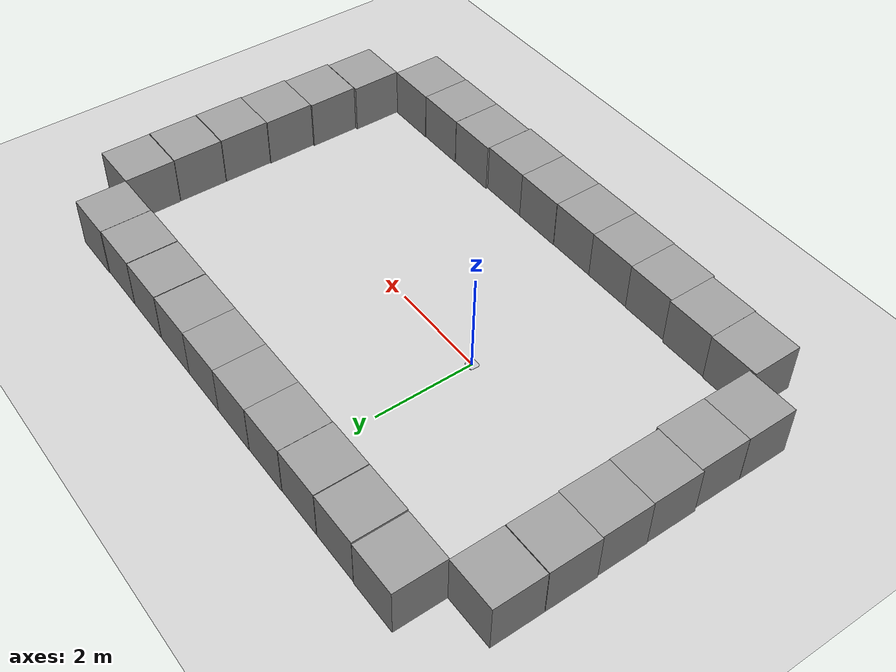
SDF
<sdf version="1.7">
 <world name="default">
  <light name="sun" type="directional">
   <pose>0 0 10 0 -0 0</pose>
   <diffuse>0.8 0.8 0.8 1</diffuse>
   <specular>0.2 0.2 0.2 1</specular>
   <attenuation>
    <range>1000</range>
    <constant>0.9</constant>
    <linear>0.01</linear>
    <quadratic>0.001</quadratic>
   </attenuation>
   <direction>-0.5 0.1 -0.9</direction>
   <spot><inner_angle>0</inner_angle><outer_angle>0</outer_angle><falloff>0</falloff></spot>
  </light>
  <model name="ground_plane">
   <static>1</static>
   <link name="link">
    <collision name="collision">
     <geometry><plane><normal>0 0 1</normal><size>100 100</size></plane></geometry>
     <surface>
      <contact><collide_bitmask>65535</collide_bitmask></contact>
      <friction><ode><mu>100</mu><mu2>50</mu2></ode></friction>
     </surface>
    </collision>
    <visual name="visual">
     <cast_shadows>0</cast_shadows>
     <geometry><plane><normal>0 0 1</normal><size>100 100</size></plane></geometry>
     <material>
      <script><uri>file://media/materials/scripts/gazebo.material</uri><name>Gazebo/Grey</name></script>
     </material>
    </visual>
   </link>
  </model>
  <gravity>0 0 -9.8</gravity>
  <magnetic_field>6e-06 2.3e-05 -4.2e-05</magnetic_field>
  <atmosphere type="adiabatic"/>
  <physics type="ode">
   <max_step_size>0.001</max_step_size>
   <real_time_factor>1</real_time_factor>
   <real_time_update_rate>1000</real_time_update_rate>
  </physics>
  <scene><ambient>0.4 0.4 0.4 1</ambient><background>0.7 0.7 0.7 1</background><shadows>1</shadows></scene>
  <spherical_coordinates>
   <surface_model>EARTH_WGS84</surface_model>
   <latitude_deg>0</latitude_deg>
   <longitude_deg>0</longitude_deg>
   <elevation>0</elevation>
   <heading_deg>0</heading_deg>
  </spherical_coordinates>
  <model name="fwomni">
   <link name="base_footprint">
    <inertial>
     <pose>0.002014 -0 0.005878 0 -0 0</pose>
     <mass>3.04689</mass>
     <inertia>
      <ixx>0.00914958</ixx>
      <ixy>-2.00784e-20</ixy>
      <ixz>-0.000169029</ixz>
      <iyy>0.00953652</iyy>
      <iyz>-2.13965e-20</iyz>
      <izz>0.0183689</izz>
     </inertia>
    </inertial>
    <collision name="base_footprint_fixed_joint_lump__base_link_collision">
     <pose>0 0 0.005 0 -0 0</pose>
     <geometry>
      <mesh>
       <scale>0.001 0.001 0.001</scale>
       <uri>/home/dell/Desktop/noetic/fwomni_ws/src/fwomni/meshes/base_link.stl</uri>
      </mesh>
     </geometry>
     <surface><friction><ode><mu>0.2</mu><mu2>0.2</mu2></ode></friction></surface>
    </collision>
    <collision name="base_footprint_fixed_joint_lump__rplidar_collision_1">
     <pose>0 0 0.045 0 -0 0</pose>
     <geometry>
      <mesh>
       <scale>0.001 0.001 0.001</scale>
       <uri>/home/dell/Desktop/noetic/fwomni_ws/src/fwomni/meshes/rplidar.stl</uri>
      </mesh>
     </geometry>
     <surface><friction><ode><mu>0.2</mu><mu2>0.2</mu2></ode></friction></surface>
    </collision>
    <visual name="base_footprint_fixed_joint_lump__base_link_visual">
     <pose>0 0 0.005 0 -0 0</pose>
     <geometry>
      <mesh>
       <scale>0.001 0.001 0.001</scale>
       <uri>/home/dell/Desktop/noetic/fwomni_ws/src/fwomni/meshes/base_link.stl</uri>
      </mesh>
     </geometry>
     <material>
      <script><name>Gazebo/Silver</name><uri>file://media/materials/scripts/gazebo.material</uri></script>
     </material>
    </visual>
    <visual name="base_footprint_fixed_joint_lump__rplidar_visual_1">
     <pose>0 0 0.045 0 -0 0</pose>
     <geometry>
      <mesh>
       <scale>0.001 0.001 0.001</scale>
       <uri>/home/dell/Desktop/noetic/fwomni_ws/src/fwomni/meshes/rplidar.stl</uri>
      </mesh>
     </geometry>
     <material>
      <script><name>Gazebo/Silver</name><uri>file://media/materials/scripts/gazebo.material</uri></script>
     </material>
    </visual>
    <self_collide>1</self_collide>
    <sensor name="head_hokuyo_sensor" type="ray">
     <visualize>0</visualize>
     <update_rate>20</update_rate>
     <ray>
      <scan>
       <horizontal>
        <samples>1400</samples>
        <resolution>1</resolution>
        <min_angle>-3.14159</min_angle>
        <max_angle>3.14159</max_angle>
       </horizontal>
       <vertical><samples>1</samples><min_angle>0</min_angle><max_angle>0</max_angle></vertical>
      </scan>
      <range><min>0.05</min><max>12</max><resolution>0.01</resolution></range>
      <noise><type>gaussian</type><mean>0</mean><stddev>0.01</stddev></noise>
     </ray>
     <plugin name="gazebo_ros_head_hokuyo_controller" filename="libgazebo_ros_laser.so">
      <topicName>laser/scan</topicName>
      <frameName>rplidar</frameName>
      <robotNamespace>/</robotNamespace>
     </plugin>
     <pose>0.065 0 0.07 0 -0 0</pose>
    </sensor>
   </link>
   <joint name="Cont1" type="revolute">
    <pose relative_to="base_footprint">0.085328 -0.085328 0.01 0 -0 0.785398</pose>
    <parent>base_footprint</parent>
    <child>front_right</child>
    <axis>
     <xyz>0 1 0</xyz>
     <limit><lower>-1e+16</lower><upper>1e+16</upper></limit>
     <dynamics><spring_reference>0</spring_reference><spring_stiffness>0</spring_stiffness></dynamics>
    </axis>
   </joint>
   <link name="front_right">
    <pose relative_to="Cont1">0 0 0 0 -0 0</pose>
    <inertial>
     <pose>0.003 -0 0 0 -0 0</pose>
     <mass>0.0147969</mass>
     <inertia><ixx>0</ixx><ixy>0</ixy><ixz>0</ixz><iyy>1e-06</iyy><iyz>0</iyz><izz>0</izz></inertia>
    </inertial>
    <collision name="front_right_collision">
     <pose>0 0 0 0 0 -1.5708</pose>
     <geometry>
      <mesh>
       <scale>0.001 0.001 0.001</scale>
       <uri>/home/dell/Desktop/noetic/fwomni_ws/src/fwomni/meshes/wheel.stl</uri>
      </mesh>
     </geometry>
     <surface><friction><ode><mu>0.2</mu><mu2>0.2</mu2></ode></friction></surface>
    </collision>
    <visual name="front_right_visual">
     <pose>0 0 0 0 0 -1.5708</pose>
     <geometry>
      <mesh>
       <scale>0.001 0.001 0.001</scale>
       <uri>/home/dell/Desktop/noetic/fwomni_ws/src/fwomni/meshes/wheel.stl</uri>
      </mesh>
     </geometry>
     <material>
      <script><name>Gazebo/Silver</name><uri>file://media/materials/scripts/gazebo.material</uri></script>
     </material>
    </visual>
    <self_collide>1</self_collide>
   </link>
   <joint name="Cont2" type="revolute">
    <pose relative_to="base_footprint">0.085328 0.085328 0.01 0 -0 2.35619</pose>
    <parent>base_footprint</parent>
    <child>front_left</child>
    <axis>
     <xyz>0 1 0</xyz>
     <limit><lower>-1e+16</lower><upper>1e+16</upper></limit>
     <dynamics><spring_reference>0</spring_reference><spring_stiffness>0</spring_stiffness></dynamics>
    </axis>
   </joint>
   <link name="front_left">
    <pose relative_to="Cont2">0 0 0 0 -0 0</pose>
    <inertial>
     <pose>0.003 -0 0 0 -0 0</pose>
     <mass>0.0147969</mass>
     <inertia><ixx>0</ixx><ixy>0</ixy><ixz>0</ixz><iyy>1e-06</iyy><iyz>0</iyz><izz>0</izz></inertia>
    </inertial>
    <collision name="front_left_collision">
     <pose>0 0 0 0 0 -1.5708</pose>
     <geometry>
      <mesh>
       <scale>0.001 0.001 0.001</scale>
       <uri>/home/dell/Desktop/noetic/fwomni_ws/src/fwomni/meshes/wheel.stl</uri>
      </mesh>
     </geometry>
     <surface><friction><ode><mu>0.2</mu><mu2>0.2</mu2></ode></friction></surface>
    </collision>
    <visual name="front_left_visual">
     <pose>0 0 0 0 0 -1.5708</pose>
     <geometry>
      <mesh>
       <scale>0.001 0.001 0.001</scale>
       <uri>/home/dell/Desktop/noetic/fwomni_ws/src/fwomni/meshes/wheel.stl</uri>
      </mesh>
     </geometry>
     <material>
      <script><name>Gazebo/Silver</name><uri>file://media/materials/scripts/gazebo.material</uri></script>
     </material>
    </visual>
    <self_collide>1</self_collide>
   </link>
   <joint name="Cont3" type="revolute">
    <pose relative_to="base_footprint">-0.085328 0.085328 0.01 0 0 -2.35619</pose>
    <parent>base_footprint</parent>
    <child>rear_left</child>
    <axis>
     <xyz>0 1 0</xyz>
     <limit><lower>-1e+16</lower><upper>1e+16</upper></limit>
     <dynamics><spring_reference>0</spring_reference><spring_stiffness>0</spring_stiffness></dynamics>
    </axis>
   </joint>
   <link name="rear_left">
    <pose relative_to="Cont3">0 0 0 0 -0 0</pose>
    <inertial>
     <pose>0.003 -0 0 0 -0 0</pose>
     <mass>0.0147969</mass>
     <inertia><ixx>0</ixx><ixy>0</ixy><ixz>0</ixz><iyy>1e-06</iyy><iyz>0</iyz><izz>0</izz></inertia>
    </inertial>
    <collision name="rear_left_collision">
     <pose>0 0 0 0 0 -1.5708</pose>
     <geometry>
      <mesh>
       <scale>0.001 0.001 0.001</scale>
       <uri>/home/dell/Desktop/noetic/fwomni_ws/src/fwomni/meshes/wheel.stl</uri>
      </mesh>
     </geometry>
     <surface><friction><ode><mu>0.2</mu><mu2>0.2</mu2></ode></friction></surface>
    </collision>
    <visual name="rear_left_visual">
     <pose>0 0 0 0 0 -1.5708</pose>
     <geometry>
      <mesh>
       <scale>0.001 0.001 0.001</scale>
       <uri>/home/dell/Desktop/noetic/fwomni_ws/src/fwomni/meshes/wheel.stl</uri>
      </mesh>
     </geometry>
     <material>
      <script><name>Gazebo/Silver</name><uri>file://media/materials/scripts/gazebo.material</uri></script>
     </material>
    </visual>
    <self_collide>1</self_collide>
   </link>
   <joint name="Cont4" type="revolute">
    <pose relative_to="base_footprint">-0.085328 -0.085328 0.01 0 0 -0.785398</pose>
    <parent>base_footprint</parent>
    <child>rear_right</child>
    <axis>
     <xyz>0 1 0</xyz>
     <limit><lower>-1e+16</lower><upper>1e+16</upper></limit>
     <dynamics><spring_reference>0</spring_reference><spring_stiffness>0</spring_stiffness></dynamics>
    </axis>
   </joint>
   <link name="rear_right">
    <pose relative_to="Cont4">0 0 0 0 -0 0</pose>
    <inertial>
     <pose>0.003 -0 0 0 -0 0</pose>
     <mass>0.0147969</mass>
     <inertia><ixx>0</ixx><ixy>0</ixy><ixz>0</ixz><iyy>1e-06</iyy><iyz>0</iyz><izz>0</izz></inertia>
    </inertial>
    <collision name="rear_right_collision">
     <pose>0 0 0 0 0 -1.5708</pose>
     <geometry>
      <mesh>
       <scale>0.001 0.001 0.001</scale>
       <uri>/home/dell/Desktop/noetic/fwomni_ws/src/fwomni/meshes/wheel.stl</uri>
      </mesh>
     </geometry>
     <surface><friction><ode><mu>0.2</mu><mu2>0.2</mu2></ode></friction></surface>
    </collision>
    <visual name="rear_right_visual">
     <pose>0 0 0 0 0 -1.5708</pose>
     <geometry>
      <mesh>
       <scale>0.001 0.001 0.001</scale>
       <uri>/home/dell/Desktop/noetic/fwomni_ws/src/fwomni/meshes/wheel.stl</uri>
      </mesh>
     </geometry>
     <material>
      <script><name>Gazebo/Silver</name><uri>file://media/materials/scripts/gazebo.material</uri></script>
     </material>
    </visual>
    <self_collide>1</self_collide>
   </link>
   <plugin name="control" filename="libgazebo_ros_control.so"><robotNamespace>/</robotNamespace></plugin>
   <static>0</static>
   <plugin name="mecanum_drive" filename="libgazebo_ros_planar_move.so">
    <commandTopic>cmd_vel</commandTopic>
    <odometryTopic>odom</odometryTopic>
    <odometryFrame>odom</odometryFrame>
    <odometryRate>100.0</odometryRate>
    <robotBaseFrame>base_footprint</robotBaseFrame>
    <publishTF>1</publishTF>
    <robotNamespace>/</robotNamespace>
   </plugin>
   <pose>5e-06 9e-06 -3.6e-05 0 8e-06 1.3e-05</pose>
  </model>
  <model name="unit_box">
   <pose>0.111991 3.51965 0.499995 1e-05 -0 -9e-06</pose>
   <link name="link">
    <inertial>
     <mass>1</mass>
     <inertia>
      <ixx>0.166667</ixx>
      <ixy>0</ixy>
      <ixz>0</ixz>
      <iyy>0.166667</iyy>
      <iyz>0</iyz>
      <izz>0.166667</izz>
     </inertia>
    </inertial>
    <collision name="collision"><geometry><box><size>1 1 1</size></box></geometry></collision>
    <visual name="visual">
     <geometry><box><size>1 1 1</size></box></geometry>
     <material>
      <script><name>Gazebo/Grey</name><uri>file://media/materials/scripts/gazebo.material</uri></script>
     </material>
    </visual>
   </link>
  </model>
  <model name="unit_box_0">
   <pose>1.112 3.52297 0.499995 1e-05 -0 -1.4e-05</pose>
   <link name="link">
    <inertial>
     <mass>1</mass>
     <inertia>
      <ixx>0.166667</ixx>
      <ixy>0</ixy>
      <ixz>0</ixz>
      <iyy>0.166667</iyy>
      <iyz>0</iyz>
      <izz>0.166667</izz>
     </inertia>
    </inertial>
    <collision name="collision"><geometry><box><size>1 1 1</size></box></geometry></collision>
    <visual name="visual">
     <geometry><box><size>1 1 1</size></box></geometry>
     <material>
      <script><name>Gazebo/Grey</name><uri>file://media/materials/scripts/gazebo.material</uri></script>
     </material>
    </visual>
   </link>
  </model>
  <model name="unit_box_1">
   <pose>2.11201 3.52251 0.5 -0 -0 -2.2e-05</pose>
   <link name="link">
    <inertial>
     <mass>1</mass>
     <inertia>
      <ixx>0.166667</ixx>
      <ixy>0</ixy>
      <ixz>0</ixz>
      <iyy>0.166667</iyy>
      <iyz>0</iyz>
      <izz>0.166667</izz>
     </inertia>
    </inertial>
    <collision name="collision"><geometry><box><size>1 1 1</size></box></geometry></collision>
    <visual name="visual">
     <geometry><box><size>1 1 1</size></box></geometry>
     <material>
      <script><name>Gazebo/Grey</name><uri>file://media/materials/scripts/gazebo.material</uri></script>
     </material>
    </visual>
   </link>
  </model>
  <model name="unit_box_2">
   <pose>3.11201 3.5221 0.5 0 0 -2e-05</pose>
   <link name="link">
    <inertial>
     <mass>1</mass>
     <inertia>
      <ixx>0.166667</ixx>
      <ixy>0</ixy>
      <ixz>0</ixz>
      <iyy>0.166667</iyy>
      <iyz>0</iyz>
      <izz>0.166667</izz>
     </inertia>
    </inertial>
    <collision name="collision"><geometry><box><size>1 1 1</size></box></geometry></collision>
    <visual name="visual">
     <geometry><box><size>1 1 1</size></box></geometry>
     <material>
      <script><name>Gazebo/Grey</name><uri>file://media/materials/scripts/gazebo.material</uri></script>
     </material>
    </visual>
   </link>
  </model>
  <model name="unit_box_3">
   <pose>4.1249 3.52178 0.499995 -1e-05 -0 -0</pose>
   <link name="link">
    <inertial>
     <mass>1</mass>
     <inertia>
      <ixx>0.166667</ixx>
      <ixy>0</ixy>
      <ixz>0</ixz>
      <iyy>0.166667</iyy>
      <iyz>0</iyz>
      <izz>0.166667</izz>
     </inertia>
    </inertial>
    <collision name="collision"><geometry><box><size>1 1 1</size></box></geometry></collision>
    <visual name="visual">
     <geometry><box><size>1 1 1</size></box></geometry>
     <material>
      <script><name>Gazebo/Grey</name><uri>file://media/materials/scripts/gazebo.material</uri></script>
     </material>
    </visual>
   </link>
  </model>
  <model name="unit_box_4">
   <pose>5.13788 3.52148 0.499995 0 1e-05 0</pose>
   <link name="link">
    <inertial>
     <mass>1</mass>
     <inertia>
      <ixx>0.166667</ixx>
      <ixy>0</ixy>
      <ixz>0</ixz>
      <iyy>0.166667</iyy>
      <iyz>0</iyz>
      <izz>0.166667</izz>
     </inertia>
    </inertial>
    <collision name="collision"><geometry><box><size>1 1 1</size></box></geometry></collision>
    <visual name="visual">
     <geometry><box><size>1 1 1</size></box></geometry>
     <material>
      <script><name>Gazebo/Grey</name><uri>file://media/materials/scripts/gazebo.material</uri></script>
     </material>
    </visual>
   </link>
  </model>
  <model name="unit_box_5">
   <pose>6.1398 3.53282 0.499995 -1e-05 0 0.002267</pose>
   <link name="link">
    <inertial>
     <mass>1</mass>
     <inertia>
      <ixx>0.166667</ixx>
      <ixy>0</ixy>
      <ixz>0</ixz>
      <iyy>0.166667</iyy>
      <iyz>0</iyz>
      <izz>0.166667</izz>
     </inertia>
    </inertial>
    <collision name="collision"><geometry><box><size>1 1 1</size></box></geometry></collision>
    <visual name="visual">
     <geometry><box><size>1 1 1</size></box></geometry>
     <material>
      <script><name>Gazebo/Grey</name><uri>file://media/materials/scripts/gazebo.material</uri></script>
     </material>
    </visual>
   </link>
  </model>
  <model name="unit_box_6">
   <pose>7.13454 2.53509 0.499995 -1e-05 -0 0.002308</pose>
   <link name="link">
    <inertial>
     <mass>1</mass>
     <inertia>
      <ixx>0.166667</ixx>
      <ixy>0</ixy>
      <ixz>0</ixz>
      <iyy>0.166667</iyy>
      <iyz>0</iyz>
      <izz>0.166667</izz>
     </inertia>
    </inertial>
    <collision name="collision"><geometry><box><size>1 1 1</size></box></geometry></collision>
    <visual name="visual">
     <geometry><box><size>1 1 1</size></box></geometry>
     <material>
      <script><name>Gazebo/Grey</name><uri>file://media/materials/scripts/gazebo.material</uri></script>
     </material>
    </visual>
   </link>
  </model>
  <model name="unit_box_7">
   <pose>7.1426 1.52415 0.499995 -1e-05 -0 -0</pose>
   <link name="link">
    <inertial>
     <mass>1</mass>
     <inertia>
      <ixx>0.166667</ixx>
      <ixy>0</ixy>
      <ixz>0</ixz>
      <iyy>0.166667</iyy>
      <iyz>0</iyz>
      <izz>0.166667</izz>
     </inertia>
    </inertial>
    <collision name="collision"><geometry><box><size>1 1 1</size></box></geometry></collision>
    <visual name="visual">
     <geometry><box><size>1 1 1</size></box></geometry>
     <material>
      <script><name>Gazebo/Grey</name><uri>file://media/materials/scripts/gazebo.material</uri></script>
     </material>
    </visual>
   </link>
  </model>
  <model name="unit_box_8">
   <pose>7.14181 0.51446 0.499995 -1e-05 -0 -0.000341</pose>
   <link name="link">
    <inertial>
     <mass>1</mass>
     <inertia>
      <ixx>0.166667</ixx>
      <ixy>0</ixy>
      <ixz>0</ixz>
      <iyy>0.166667</iyy>
      <iyz>0</iyz>
      <izz>0.166667</izz>
     </inertia>
    </inertial>
    <collision name="collision"><geometry><box><size>1 1 1</size></box></geometry></collision>
    <visual name="visual">
     <geometry><box><size>1 1 1</size></box></geometry>
     <material>
      <script><name>Gazebo/Grey</name><uri>file://media/materials/scripts/gazebo.material</uri></script>
     </material>
    </visual>
   </link>
  </model>
  <model name="unit_box_9">
   <pose>7.12141 -0.485584 0.499995 1e-05 -0 -0.000335</pose>
   <link name="link">
    <inertial>
     <mass>1</mass>
     <inertia>
      <ixx>0.166667</ixx>
      <ixy>0</ixy>
      <ixz>0</ixz>
      <iyy>0.166667</iyy>
      <iyz>0</iyz>
      <izz>0.166667</izz>
     </inertia>
    </inertial>
    <collision name="collision"><geometry><box><size>1 1 1</size></box></geometry></collision>
    <visual name="visual">
     <geometry><box><size>1 1 1</size></box></geometry>
     <material>
      <script><name>Gazebo/Grey</name><uri>file://media/materials/scripts/gazebo.material</uri></script>
     </material>
    </visual>
   </link>
  </model>
  <model name="unit_box_10">
   <pose>-0.891085 3.51392 0.499995 0 1e-05 0</pose>
   <link name="link">
    <inertial>
     <mass>1</mass>
     <inertia>
      <ixx>0.166667</ixx>
      <ixy>0</ixy>
      <ixz>0</ixz>
      <iyy>0.166667</iyy>
      <iyz>0</iyz>
      <izz>0.166667</izz>
     </inertia>
    </inertial>
    <collision name="collision"><geometry><box><size>1 1 1</size></box></geometry></collision>
    <visual name="visual">
     <geometry><box><size>1 1 1</size></box></geometry>
     <material>
      <script><name>Gazebo/Grey</name><uri>file://media/materials/scripts/gazebo.material</uri></script>
     </material>
    </visual>
   </link>
  </model>
  <model name="unit_box_11">
   <pose>-1.90431 3.51422 0.499995 -1e-05 -0 -0</pose>
   <link name="link">
    <inertial>
     <mass>1</mass>
     <inertia>
      <ixx>0.166667</ixx>
      <ixy>0</ixy>
      <ixz>0</ixz>
      <iyy>0.166667</iyy>
      <iyz>0</iyz>
      <izz>0.166667</izz>
     </inertia>
    </inertial>
    <collision name="collision"><geometry><box><size>1 1 1</size></box></geometry></collision>
    <visual name="visual">
     <geometry><box><size>1 1 1</size></box></geometry>
     <material>
      <script><name>Gazebo/Grey</name><uri>file://media/materials/scripts/gazebo.material</uri></script>
     </material>
    </visual>
   </link>
  </model>
  <model name="unit_box_12">
   <pose>-2.9272 3.52427 0.499995 0 1e-05 0</pose>
   <link name="link">
    <inertial>
     <mass>1</mass>
     <inertia>
      <ixx>0.166667</ixx>
      <ixy>0</ixy>
      <ixz>0</ixz>
      <iyy>0.166667</iyy>
      <iyz>0</iyz>
      <izz>0.166667</izz>
     </inertia>
    </inertial>
    <collision name="collision"><geometry><box><size>1 1 1</size></box></geometry></collision>
    <visual name="visual">
     <geometry><box><size>1 1 1</size></box></geometry>
     <material>
      <script><name>Gazebo/Grey</name><uri>file://media/materials/scripts/gazebo.material</uri></script>
     </material>
    </visual>
   </link>
  </model>
  <model name="unit_box_13">
   <pose>-3.93042 2.54107 0.499995 -1e-05 -0 -0</pose>
   <link name="link">
    <inertial>
     <mass>1</mass>
     <inertia>
      <ixx>0.166667</ixx>
      <ixy>0</ixy>
      <ixz>0</ixz>
      <iyy>0.166667</iyy>
      <iyz>0</iyz>
      <izz>0.166667</izz>
     </inertia>
    </inertial>
    <collision name="collision"><geometry><box><size>1 1 1</size></box></geometry></collision>
    <visual name="visual">
     <geometry><box><size>1 1 1</size></box></geometry>
     <material>
      <script><name>Gazebo/Grey</name><uri>file://media/materials/scripts/gazebo.material</uri></script>
     </material>
    </visual>
   </link>
  </model>
  <model name="unit_box_14">
   <pose>-3.93025 1.53077 0.499995 1e-05 -0 0.000176</pose>
   <link name="link">
    <inertial>
     <mass>1</mass>
     <inertia>
      <ixx>0.166667</ixx>
      <ixy>0</ixy>
      <ixz>0</ixz>
      <iyy>0.166667</iyy>
      <iyz>0</iyz>
      <izz>0.166667</izz>
     </inertia>
    </inertial>
    <collision name="collision"><geometry><box><size>1 1 1</size></box></geometry></collision>
    <visual name="visual">
     <geometry><box><size>1 1 1</size></box></geometry>
     <material>
      <script><name>Gazebo/Grey</name><uri>file://media/materials/scripts/gazebo.material</uri></script>
     </material>
    </visual>
   </link>
  </model>
  <model name="unit_box_15">
   <pose>-3.91028 0.530734 0.499995 -1e-05 -0 0.000116</pose>
   <link name="link">
    <inertial>
     <mass>1</mass>
     <inertia>
      <ixx>0.166667</ixx>
      <ixy>0</ixy>
      <ixz>0</ixz>
      <iyy>0.166667</iyy>
      <iyz>0</iyz>
      <izz>0.166667</izz>
     </inertia>
    </inertial>
    <collision name="collision"><geometry><box><size>1 1 1</size></box></geometry></collision>
    <visual name="visual">
     <geometry><box><size>1 1 1</size></box></geometry>
     <material>
      <script><name>Gazebo/Grey</name><uri>file://media/materials/scripts/gazebo.material</uri></script>
     </material>
    </visual>
   </link>
  </model>
  <model name="unit_box_16">
   <pose>-3.9005 -0.469324 0.499995 -1e-05 0 1.8e-05</pose>
   <link name="link">
    <inertial>
     <mass>1</mass>
     <inertia>
      <ixx>0.166667</ixx>
      <ixy>0</ixy>
      <ixz>0</ixz>
      <iyy>0.166667</iyy>
      <iyz>0</iyz>
      <izz>0.166667</izz>
     </inertia>
    </inertial>
    <collision name="collision"><geometry><box><size>1 1 1</size></box></geometry></collision>
    <visual name="visual">
     <geometry><box><size>1 1 1</size></box></geometry>
     <material>
      <script><name>Gazebo/Grey</name><uri>file://media/materials/scripts/gazebo.material</uri></script>
     </material>
    </visual>
   </link>
  </model>
  <model name="unit_box_17">
   <pose>-3.86035 -1.46946 0.499995 0 1e-05 -4.4e-05</pose>
   <link name="link">
    <inertial>
     <mass>1</mass>
     <inertia>
      <ixx>0.166667</ixx>
      <ixy>0</ixy>
      <ixz>0</ixz>
      <iyy>0.166667</iyy>
      <iyz>0</iyz>
      <izz>0.166667</izz>
     </inertia>
    </inertial>
    <collision name="collision"><geometry><box><size>1 1 1</size></box></geometry></collision>
    <visual name="visual">
     <geometry><box><size>1 1 1</size></box></geometry>
     <material>
      <script><name>Gazebo/Grey</name><uri>file://media/materials/scripts/gazebo.material</uri></script>
     </material>
    </visual>
   </link>
  </model>
  <model name="unit_box_18">
   <pose>-3.86229 -2.46948 0.499995 1e-05 -0 -4.4e-05</pose>
   <link name="link">
    <inertial>
     <mass>1</mass>
     <inertia>
      <ixx>0.166667</ixx>
      <ixy>0</ixy>
      <ixz>0</ixz>
      <iyy>0.166667</iyy>
      <iyz>0</iyz>
      <izz>0.166667</izz>
     </inertia>
    </inertial>
    <collision name="collision"><geometry><box><size>1 1 1</size></box></geometry></collision>
    <visual name="visual">
     <geometry><box><size>1 1 1</size></box></geometry>
     <material>
      <script><name>Gazebo/Grey</name><uri>file://media/materials/scripts/gazebo.material</uri></script>
     </material>
    </visual>
   </link>
  </model>
  <model name="unit_box_19">
   <pose>7.08833 -1.48564 0.499995 1e-05 0 -0.00033</pose>
   <link name="link">
    <inertial>
     <mass>1</mass>
     <inertia>
      <ixx>0.166667</ixx>
      <ixy>0</ixy>
      <ixz>0</ixz>
      <iyy>0.166667</iyy>
      <iyz>0</iyz>
      <izz>0.166667</izz>
     </inertia>
    </inertial>
    <collision name="collision"><geometry><box><size>1 1 1</size></box></geometry></collision>
    <visual name="visual">
     <geometry><box><size>1 1 1</size></box></geometry>
     <material>
      <script><name>Gazebo/Grey</name><uri>file://media/materials/scripts/gazebo.material</uri></script>
     </material>
    </visual>
   </link>
  </model>
  <model name="unit_box_20">
   <pose>-2.97954 -3.49538 0.499995 -1e-05 -0 0.003369</pose>
   <link name="link">
    <inertial>
     <mass>1</mass>
     <inertia>
      <ixx>0.166667</ixx>
      <ixy>0</ixy>
      <ixz>0</ixz>
      <iyy>0.166667</iyy>
      <iyz>0</iyz>
      <izz>0.166667</izz>
     </inertia>
    </inertial>
    <collision name="collision"><geometry><box><size>1 1 1</size></box></geometry></collision>
    <visual name="visual">
     <geometry><box><size>1 1 1</size></box></geometry>
     <material>
      <script><name>Gazebo/Grey</name><uri>file://media/materials/scripts/gazebo.material</uri></script>
     </material>
    </visual>
   </link>
  </model>
  <model name="unit_box_21">
   <pose>-1.97914 -3.50874 0.499995 0 1e-05 0.003314</pose>
   <link name="link">
    <inertial>
     <mass>1</mass>
     <inertia>
      <ixx>0.166667</ixx>
      <ixy>0</ixy>
      <ixz>0</ixz>
      <iyy>0.166667</iyy>
      <iyz>0</iyz>
      <izz>0.166667</izz>
     </inertia>
    </inertial>
    <collision name="collision"><geometry><box><size>1 1 1</size></box></geometry></collision>
    <visual name="visual">
     <geometry><box><size>1 1 1</size></box></geometry>
     <material>
      <script><name>Gazebo/Grey</name><uri>file://media/materials/scripts/gazebo.material</uri></script>
     </material>
    </visual>
   </link>
  </model>
  <model name="unit_box_22">
   <pose>-0.979021 -3.54466 0.499995 0 -1e-05 0.003314</pose>
   <link name="link">
    <inertial>
     <mass>1</mass>
     <inertia>
      <ixx>0.166667</ixx>
      <ixy>0</ixy>
      <ixz>0</ixz>
      <iyy>0.166667</iyy>
      <iyz>0</iyz>
      <izz>0.166667</izz>
     </inertia>
    </inertial>
    <collision name="collision"><geometry><box><size>1 1 1</size></box></geometry></collision>
    <visual name="visual">
     <geometry><box><size>1 1 1</size></box></geometry>
     <material>
      <script><name>Gazebo/Grey</name><uri>file://media/materials/scripts/gazebo.material</uri></script>
     </material>
    </visual>
   </link>
  </model>
  <model name="unit_box_23">
   <pose>0.021164 -3.55066 0.499995 -0 1e-05 0.003137</pose>
   <link name="link">
    <inertial>
     <mass>1</mass>
     <inertia>
      <ixx>0.166667</ixx>
      <ixy>0</ixy>
      <ixz>0</ixz>
      <iyy>0.166667</iyy>
      <iyz>0</iyz>
      <izz>0.166667</izz>
     </inertia>
    </inertial>
    <collision name="collision"><geometry><box><size>1 1 1</size></box></geometry></collision>
    <visual name="visual">
     <geometry><box><size>1 1 1</size></box></geometry>
     <material>
      <script><name>Gazebo/Grey</name><uri>file://media/materials/scripts/gazebo.material</uri></script>
     </material>
    </visual>
   </link>
  </model>
  <model name="unit_box_24">
   <pose>1.02117 -3.55004 0.5 0 -0 0.003137</pose>
   <link name="link">
    <inertial>
     <mass>1</mass>
     <inertia>
      <ixx>0.166667</ixx>
      <ixy>0</ixy>
      <ixz>0</ixz>
      <iyy>0.166667</iyy>
      <iyz>0</iyz>
      <izz>0.166667</izz>
     </inertia>
    </inertial>
    <collision name="collision"><geometry><box><size>1 1 1</size></box></geometry></collision>
    <visual name="visual">
     <geometry><box><size>1 1 1</size></box></geometry>
     <material>
      <script><name>Gazebo/Grey</name><uri>file://media/materials/scripts/gazebo.material</uri></script>
     </material>
    </visual>
   </link>
  </model>
  <model name="unit_box_25">
   <pose>2.02117 -3.53942 0.5 0 -0 0.003091</pose>
   <link name="link">
    <inertial>
     <mass>1</mass>
     <inertia>
      <ixx>0.166667</ixx>
      <ixy>0</ixy>
      <ixz>0</ixz>
      <iyy>0.166667</iyy>
      <iyz>0</iyz>
      <izz>0.166667</izz>
     </inertia>
    </inertial>
    <collision name="collision"><geometry><box><size>1 1 1</size></box></geometry></collision>
    <visual name="visual">
     <geometry><box><size>1 1 1</size></box></geometry>
     <material>
      <script><name>Gazebo/Grey</name><uri>file://media/materials/scripts/gazebo.material</uri></script>
     </material>
    </visual>
   </link>
  </model>
  <model name="unit_box_26">
   <pose>3.02118 -3.53866 0.499995 -1e-05 -0 0.003109</pose>
   <link name="link">
    <inertial>
     <mass>1</mass>
     <inertia>
      <ixx>0.166667</ixx>
      <ixy>0</ixy>
      <ixz>0</ixz>
      <iyy>0.166667</iyy>
      <iyz>0</iyz>
      <izz>0.166667</izz>
     </inertia>
    </inertial>
    <collision name="collision"><geometry><box><size>1 1 1</size></box></geometry></collision>
    <visual name="visual">
     <geometry><box><size>1 1 1</size></box></geometry>
     <material>
      <script><name>Gazebo/Grey</name><uri>file://media/materials/scripts/gazebo.material</uri></script>
     </material>
    </visual>
   </link>
  </model>
  <model name="unit_box_27">
   <pose>4.02106 -3.49721 0.5 0 -0 0.003108</pose>
   <link name="link">
    <inertial>
     <mass>1</mass>
     <inertia>
      <ixx>0.166667</ixx>
      <ixy>0</ixy>
      <ixz>0</ixz>
      <iyy>0.166667</iyy>
      <iyz>0</iyz>
      <izz>0.166667</izz>
     </inertia>
    </inertial>
    <collision name="collision"><geometry><box><size>1 1 1</size></box></geometry></collision>
    <visual name="visual">
     <geometry><box><size>1 1 1</size></box></geometry>
     <material>
      <script><name>Gazebo/Grey</name><uri>file://media/materials/scripts/gazebo.material</uri></script>
     </material>
    </visual>
   </link>
  </model>
  <model name="unit_box_28">
   <pose>5.02153 -3.49163 0.5 0 -0 0.002159</pose>
   <link name="link">
    <inertial>
     <mass>1</mass>
     <inertia>
      <ixx>0.166667</ixx>
      <ixy>0</ixy>
      <ixz>0</ixz>
      <iyy>0.166667</iyy>
      <iyz>0</iyz>
      <izz>0.166667</izz>
     </inertia>
    </inertial>
    <collision name="collision"><geometry><box><size>1 1 1</size></box></geometry></collision>
    <visual name="visual">
     <geometry><box><size>1 1 1</size></box></geometry>
     <material>
      <script><name>Gazebo/Grey</name><uri>file://media/materials/scripts/gazebo.material</uri></script>
     </material>
    </visual>
   </link>
  </model>
  <model name="unit_box_29">
   <pose>6.02154 -3.48174 0.499995 -0 -1e-05 0.002094</pose>
   <link name="link">
    <inertial>
     <mass>1</mass>
     <inertia>
      <ixx>0.166667</ixx>
      <ixy>0</ixy>
      <ixz>0</ixz>
      <iyy>0.166667</iyy>
      <iyz>0</iyz>
      <izz>0.166667</izz>
     </inertia>
    </inertial>
    <collision name="collision"><geometry><box><size>1 1 1</size></box></geometry></collision>
    <visual name="visual">
     <geometry><box><size>1 1 1</size></box></geometry>
     <material>
      <script><name>Gazebo/Grey</name><uri>file://media/materials/scripts/gazebo.material</uri></script>
     </material>
    </visual>
   </link>
  </model>
  <model name="unit_box_30">
   <pose>7.0384 -2.49071 0.5 0 -0 0</pose>
   <link name="link">
    <inertial>
     <mass>1</mass>
     <inertia>
      <ixx>0.166667</ixx>
      <ixy>0</ixy>
      <ixz>0</ixz>
      <iyy>0.166667</iyy>
      <iyz>0</iyz>
      <izz>0.166667</izz>
     </inertia>
    </inertial>
    <collision name="collision"><geometry><box><size>1 1 1</size></box></geometry></collision>
    <visual name="visual">
     <geometry><box><size>1 1 1</size></box></geometry>
     <material>
      <script><name>Gazebo/Grey</name><uri>file://media/materials/scripts/gazebo.material</uri></script>
     </material>
    </visual>
   </link>
  </model>
 </world>
</sdf>
